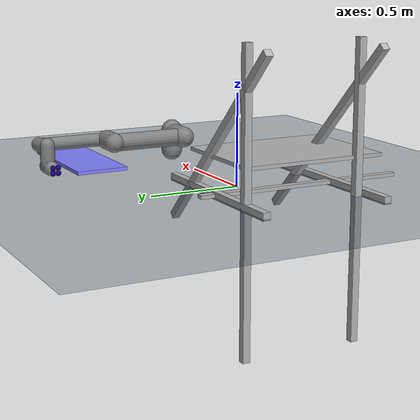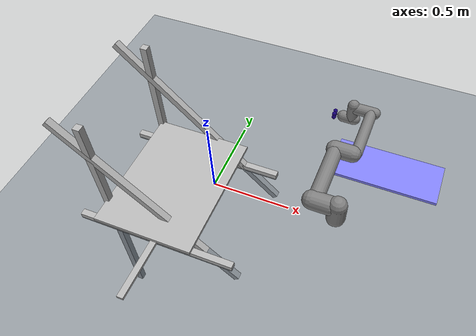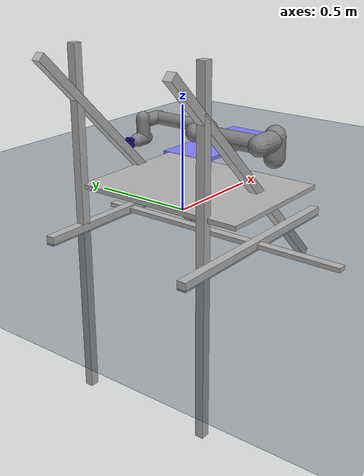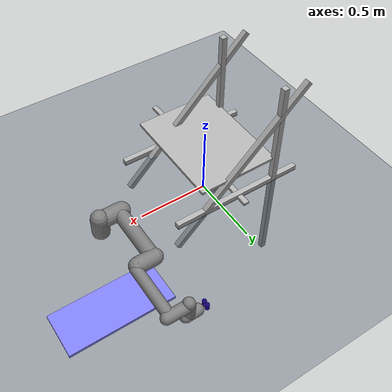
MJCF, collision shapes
<mujoco model="ur5e scene">
  <compiler angle="radian" meshdir="assets/"/>

  <option integrator="implicitfast"/>

  <size nkey="1"/>

  <visual>
    <global azimuth="120" elevation="-20"/>
    <headlight diffuse="0.6 0.6 0.6" specular="0 0 0"/>
  </visual>

  <statistic meansize="0.08" extent="0.8" center="0.3 0 0.3"/>

  <default>
    <default class="ur5e">
      <material shininess="0.25"/>
      <joint range="-6.28319 6.28319" armature="0.1"/>
      <site size="0.001 0.005 0.005" group="4" rgba="0.5 0.5 0.5 0.3"/>
      <general ctrlrange="-6.2831 6.2831" forcerange="-150 150" biastype="affine" gainprm="2000" biasprm="0 -2000 -400"/>
      <default class="size3">
        <default class="size3_limited">
          <joint range="-3.1415 3.1415"/>
          <general ctrlrange="-3.1415 3.1415"/>
        </default>
      </default>
      <default class="size1">
        <general forcerange="-28 28" gainprm="500" biasprm="0 -500 -100"/>
      </default>
      <default class="visual">
        <geom type="mesh" contype="0" conaffinity="0" group="2"/>
      </default>
      <default class="collision">
        <geom type="capsule" group="3"/>
        <default class="eef_collision">
          <geom type="cylinder"/>
        </default>
      </default>
      <default class="active_adhesion">
        <geom size="3.4 3.4 3.4" margin="0.01" gap="0.01" rgba="0.1 0 0.5 1"/>
      </default>
    </default>
  </default>

  <asset>
    <texture type="2d" name="grid" builtin="checker" mark="cross" rgb1="0.2 0.3 0.4" rgb2="0.1 0.15 0.2" markrgb="0.8 0.8 0.8" width="512" height="512"/>
    <material name="black" class="ur5e" rgba="0.033 0.033 0.033 1"/>
    <material name="jointgray" class="ur5e" rgba="0.278 0.278 0.278 1"/>
    <material name="linkgray" class="ur5e" rgba="0.82 0.82 0.82 1"/>
    <material name="urblue" class="ur5e" rgba="0.49 0.678 0.8 1"/>
    <material name="grid" texture="grid" texuniform="true"/>
    <material name="metal_material" specular="0.6" shininess="0.4" rgba="0.7 0.7 0.7 1"/>
    <mesh name="base_0" file="base_0.obj"/>
    <mesh name="base_1" file="base_1.obj"/>
    <mesh name="shoulder_0" file="shoulder_0.obj"/>
    <mesh name="shoulder_1" file="shoulder_1.obj"/>
    <mesh name="shoulder_2" file="shoulder_2.obj"/>
    <mesh name="upperarm_0" file="upperarm_0.obj"/>
    <mesh name="upperarm_1" file="upperarm_1.obj"/>
    <mesh name="upperarm_2" file="upperarm_2.obj"/>
    <mesh name="upperarm_3" file="upperarm_3.obj"/>
    <mesh name="forearm_0" file="forearm_0.obj"/>
    <mesh name="forearm_1" file="forearm_1.obj"/>
    <mesh name="forearm_2" file="forearm_2.obj"/>
    <mesh name="forearm_3" file="forearm_3.obj"/>
    <mesh name="wrist1_0" file="wrist1_0.obj"/>
    <mesh name="wrist1_1" file="wrist1_1.obj"/>
    <mesh name="wrist1_2" file="wrist1_2.obj"/>
    <mesh name="wrist2_0" file="wrist2_0.obj"/>
    <mesh name="wrist2_1" file="wrist2_1.obj"/>
    <mesh name="wrist2_2" file="wrist2_2.obj"/>
    <mesh name="wrist3" file="wrist3.obj"/>
  </asset>

  <worldbody>
    <geom size="10 10 0.1" type="plane" solimp="0.99 0.99 0.01" material="grid"/>
    <light name="spotlight" target="wrist_2_link" pos="0 -1 2" dir="0 0 -1" mode="targetbodycom"/>
    <light pos="0 0 1.5" dir="0 0 -1" directional="true"/>
    <body name="base" childclass="ur5e" pos="0.8 0 0" quat="0.707107 0 0 0.707107">
      <inertial pos="0 0 0" mass="4" diaginertia="0.00443333 0.00443333 0.0072"/>
      <geom class="visual" material="black" mesh="base_0"/>
      <geom class="visual" material="jointgray" mesh="base_1"/>
      <body name="shoulder_link" pos="0 0 0.163">
        <inertial pos="0 0 0" mass="3.7" diaginertia="0.0102675 0.0102675 0.00666"/>
        <joint name="shoulder_pan_joint" class="size3" pos="0 0 0" axis="0 0 1"/>
        <geom class="visual" material="urblue" mesh="shoulder_0"/>
        <geom class="visual" material="black" mesh="shoulder_1"/>
        <geom class="visual" material="jointgray" mesh="shoulder_2"/>
        <geom class="collision" size="0.06 0.06" pos="0 0 -0.04"/>
        <body name="upper_arm_link" pos="0 0.138 0" quat="0.707107 0 0.707107 0">
          <inertial pos="0 0 0.2125" mass="8.393" diaginertia="0.133886 0.133886 0.0151074"/>
          <joint name="shoulder_lift_joint" class="size3" pos="0 0 0" axis="0 1 0"/>
          <geom class="visual" material="linkgray" mesh="upperarm_0"/>
          <geom class="visual" material="black" mesh="upperarm_1"/>
          <geom class="visual" material="jointgray" mesh="upperarm_2"/>
          <geom class="visual" material="urblue" mesh="upperarm_3"/>
          <geom class="collision" size="0.06 0.06" pos="0 -0.04 0" quat="0.707107 0.707107 0 0"/>
          <geom class="collision" size="0.05 0.2" pos="0 0 0.2"/>
          <body name="forearm_link" pos="0 -0.131 0.425">
            <inertial pos="0 0 0.196" mass="2.275" diaginertia="0.0311796 0.0311796 0.004095"/>
            <joint name="elbow_joint" class="size3_limited" pos="0 0 0" axis="0 1 0"/>
            <geom class="visual" material="urblue" mesh="forearm_0"/>
            <geom class="visual" material="linkgray" mesh="forearm_1"/>
            <geom class="visual" material="black" mesh="forearm_2"/>
            <geom class="visual" material="jointgray" mesh="forearm_3"/>
            <geom class="collision" size="0.055 0.06" pos="0 0.08 0" quat="0.707107 0.707107 0 0"/>
            <geom class="collision" size="0.038 0.19" pos="0 0 0.2"/>
            <body name="wrist_1_link" pos="0 0 0.392" quat="0.707107 0 0.707107 0">
              <inertial pos="0 0.127 0" mass="1.219" diaginertia="0.0025599 0.0025599 0.0021942"/>
              <joint name="wrist_1_joint" class="size1" pos="0 0 0" axis="0 1 0"/>
              <geom class="visual" material="black" mesh="wrist1_0"/>
              <geom class="visual" material="urblue" mesh="wrist1_1"/>
              <geom class="visual" material="jointgray" mesh="wrist1_2"/>
              <geom class="collision" size="0.04 0.07" pos="0 0.05 0" quat="0.707107 0.707107 0 0"/>
              <body name="wrist_2_link" pos="0 0.127 0">
                <inertial pos="0 0 0.1" mass="1.219" diaginertia="0.0025599 0.0025599 0.0021942"/>
                <joint name="wrist_2_joint" class="size1" pos="0 0 0" axis="0 0 1"/>
                <geom class="visual" material="black" mesh="wrist2_0"/>
                <geom class="visual" material="urblue" mesh="wrist2_1"/>
                <geom class="visual" material="jointgray" mesh="wrist2_2"/>
                <geom class="collision" size="0.04 0.06" pos="0 0 0.04"/>
                <geom class="collision" size="0.04 0.04" pos="0 0.02 0.1" quat="0.707107 0.707107 0 0"/>
                <body name="wrist_3_link" pos="0 0 0.1">
                  <inertial pos="0 0.0771683 0" quat="0.707107 0 0 0.707107" mass="0.1889" diaginertia="0.000132134 9.90863e-05 9.90863e-05"/>
                  <joint name="wrist_3_joint" class="size1" pos="0 0 0" axis="0 1 0"/>
                  <geom class="visual" material="linkgray" mesh="wrist3"/>
                  <geom name="adhesion_gripper" size="0.001" pos="0 0.08 0" priority="2" margin="0.01" gap="0.01" rgba="0.8 0.5 0.5 1"/>
                  <body name="4boxes" childclass="active_adhesion" pos="0.002 0.12 0" quat="0.707107 0.707107 0 0">
                    <joint name="arm3" pos="0 -0.03 0" axis="0 1 0" damping="0.01"/>
                    <geom size="0.015" pos="0.015 0.015 0"/>
                    <geom size="0.015" pos="0.015 -0.015 0"/>
                    <geom size="0.015" pos="-0.015 0.015 0"/>
                    <geom size="0.015" pos="-0.015 -0.015 0"/>
                    <site name="attachment_site" pos="0 0.1 0" rgba="1 0 0 1"/>
                  </body>
                </body>
              </body>
            </body>
          </body>
        </body>
      </body>
    </body>
    <body name="slab_mocap" pos="1 0.5 0.01" mocap="true">
      <geom name="slab" size="0.35 0.15 0.01" type="box" rgba="0.5 0.5 1 0.3"/>
    </body>
    <body name="frame_base" pos="-0.15 -0.3 0" quat="0.707107 0 0 0.707107">
      <inertial pos="0 0 0" mass="1" diaginertia="0.001 0.001 0.001"/>
      <geom name="base_beam" size="0.6 0.02 0.01" pos="0 0 0.01" type="box" solimp="0.9 0.95 0.01" material="metal_material"/>
      <geom name="base_stage" size="0.4 0.3 0.01" pos="0.1 0 0.2" type="box" solimp="0.9 0.95 0.01" material="metal_material"/>
      <body name="horizontal_support1" pos="0 0 0.01">
        <inertial pos="0 0 0" mass="1" diaginertia="0.001 0.001 0.001"/>
        <geom name="horizontal_beam1" size="0.02 0.5 0.02" pos="-0.2 0 0" quat="0.707107 0 0.707107 0" type="box" solimp="0.9 0.95 0.01" material="metal_material"/>
        <body name="vertical_support1">
          <inertial pos="0 0 0" mass="1" diaginertia="0.001 0.001 0.001"/>
          <geom name="vertical_beam1" size="0.02 0.8 0.02" pos="-0.15 0.3 0" quat="0 0 0.707107 0.707107" type="box" solimp="0.9 0.95 0.01" material="metal_material"/>
          <body name="angled_bar2" pos="0 0 0.1">
            <inertial pos="0 0 0" mass="1" diaginertia="0.001 0.001 0.001"/>
            <geom name="angled_beam2" size="0.02 0.7 0.02" pos="-0.15 0 0.175" quat="0.924261 0.38176 0 0" type="box" solimp="0.9 0.95 0.01" material="metal_material"/>
          </body>
        </body>
      </body>
      <body name="horizontal_support2" pos="0 0 0.01">
        <inertial pos="0 0 0" mass="1" diaginertia="0.001 0.001 0.001"/>
        <geom name="horizontal_beam2" size="0.02 0.5 0.02" pos="0.5 0 0" quat="-0.707107 0 0.707107 0" type="box" solimp="0.9 0.95 0.01" material="metal_material"/>
        <body name="angled_bar3" pos="0.8 0 0.1">
          <inertial pos="0 0 0" mass="1" diaginertia="0.001 0.001 0.001"/>
          <geom name="angled_beam3" size="0.02 0.7 0.02" pos="-0.3 0 0.175" quat="0.924261 0.38176 0 0" type="box" solimp="0.9 0.95 0.01" material="metal_material"/>
        </body>
        <body name="vertical_support2">
          <inertial pos="0 0 0" mass="1" diaginertia="0.001 0.001 0.001"/>
          <geom name="vertical_beam2" size="0.02 0.8 0.02" pos="0.5 0.3 0" quat="0 0 -0.707107 0.707107" type="box" solimp="0.9 0.95 0.01" material="metal_material"/>
        </body>
      </body>
    </body>
  </worldbody>

  <actuator>
    <general name="shoulder_pan" class="size3" joint="shoulder_pan_joint"/>
    <general name="shoulder_lift" class="size3" joint="shoulder_lift_joint"/>
    <general name="elbow" class="size3_limited" joint="elbow_joint"/>
    <general name="wrist_1" class="size1" joint="wrist_1_joint"/>
    <general name="wrist_2" class="size1" joint="wrist_2_joint"/>
    <general name="wrist_3" class="size1" joint="wrist_3_joint"/>
    <general name="adhere_wrist" body="4boxes" ctrllimited="true" ctrlrange="0 1" gainprm="1050"/>
  </actuator>

  <sensor>
    <jointpos joint="shoulder_pan_joint" name="shoulder_pan_pos"/>
    <jointpos joint="shoulder_lift_joint" name="shoulder_lift_pos"/>
    <jointpos joint="elbow_joint" name="elbow_pos"/>
    <jointpos joint="wrist_1_joint" name="wrist_1_pos"/>
    <jointpos joint="wrist_2_joint" name="wrist_2_pos"/>
    <jointpos joint="wrist_3_joint" name="wrist_3_pos"/>
    <jointvel joint="shoulder_pan_joint" name="shoulder_pan_vel"/>
    <jointvel joint="shoulder_lift_joint" name="shoulder_lift_vel"/>
    <jointvel joint="elbow_joint" name="elbow_vel"/>
    <jointvel joint="wrist_1_joint" name="wrist_1_vel"/>
    <jointvel joint="wrist_2_joint" name="wrist_2_vel"/>
    <jointvel joint="wrist_3_joint" name="wrist_3_vel"/>
  </sensor>

  <keyframe>
    <key name="home" time="3.02" qpos="-1.5708 -1.56258 1.57886 -1.56794 -1.5708 -4.24722e-08 -3.2969e-10" qvel="6.19139e-10 8.58291e-09 8.01964e-09 2.33301e-09 0 0 3.73655e-11" ctrl="-1.5708 -1.5708 1.5708 -1.5708 -1.5708 0 0"/>
  </keyframe>
</mujoco>
